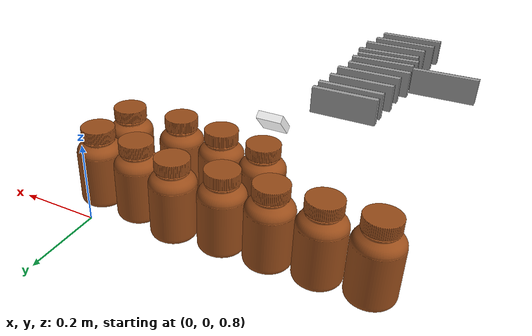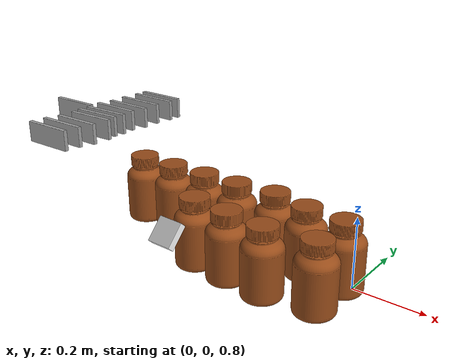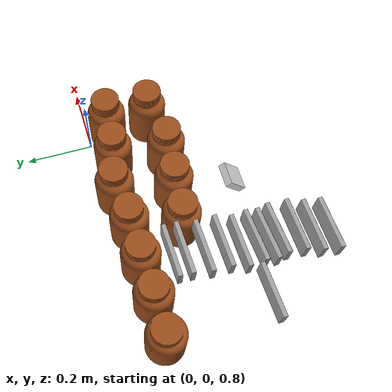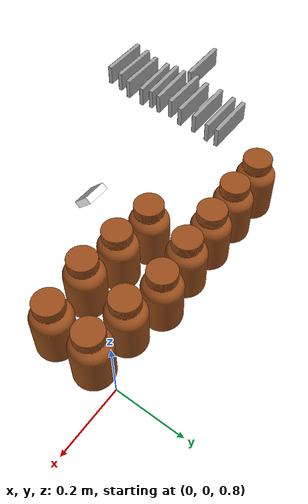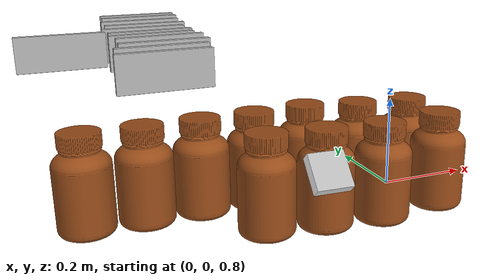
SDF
<sdf version="1.7">
 <world name="default">
  <model name="med_1_0_clone_2">
   <link name="link_0">
    <inertial>
     <mass>1</mass>
     <inertia>
      <ixx>0.166667</ixx>
      <ixy>0</ixy>
      <ixz>0</ixz>
      <iyy>0.166667</iyy>
      <iyz>0</iyz>
      <izz>0.166667</izz>
     </inertia>
    </inertial>
    <pose>0 -0.005 -0.025 0 -0 0</pose>
    <visual name="visual">
     <pose>0 0.005 0.025 0 -0 0</pose>
     <geometry><mesh><uri>model://med_1/meshes/med-1.dae</uri><scale>0.01 0.01 0.01</scale></mesh></geometry>
     <material>
      <shader type="pixel"><normal_map>__default__</normal_map></shader>
      <emissive>0 0 0 1</emissive>
     </material>
    </visual>
    <collision name="collision">
     <pose>0 0.005 0.025 0 -0 0</pose>
     <geometry><mesh><uri>model://med_1/meshes/med-1.dae</uri><scale>0.01 0.01 0.01</scale></mesh></geometry>
     <surface>
      <friction>
       <ode><mu>1</mu><mu2>1</mu2><fdir1>0 0 0</fdir1><slip1>0</slip1><slip2>0</slip2></ode>
       <torsional>
        <coefficient>1</coefficient>
        <patch_radius>0</patch_radius>
        <surface_radius>0</surface_radius>
        <use_patch_radius>1</use_patch_radius>
        <ode><slip>0</slip></ode>
       </torsional>
      </friction>
      <bounce><restitution_coefficient>0</restitution_coefficient><threshold>1e+06</threshold></bounce>
      <contact>
       <collide_without_contact>0</collide_without_contact>
       <collide_without_contact_bitmask>1</collide_without_contact_bitmask>
       <collide_bitmask>1</collide_bitmask>
       <ode>
        <soft_cfm>0</soft_cfm>
        <soft_erp>0.2</soft_erp>
        <kp>1e+13</kp>
        <kd>1</kd>
        <max_vel>0.01</max_vel>
        <min_depth>0</min_depth>
       </ode>
       <bullet>
        <split_impulse>1</split_impulse>
        <split_impulse_penetration_threshold>-0.01</split_impulse_penetration_threshold>
        <soft_cfm>0</soft_cfm>
        <soft_erp>0.2</soft_erp>
        <kp>1e+13</kp>
        <kd>1</kd>
       </bullet>
      </contact>
     </surface>
    </collision>
   </link>
   <static>0</static>
   <pose>-0.568098 -0.151441 1.20019 2e-06 -1e-06 -3.1318</pose>
  </model>
  <model name="med_1_0_clone_4">
   <link name="link_0">
    <inertial>
     <mass>1</mass>
     <inertia>
      <ixx>0.166667</ixx>
      <ixy>0</ixy>
      <ixz>0</ixz>
      <iyy>0.166667</iyy>
      <iyz>0</iyz>
      <izz>0.166667</izz>
     </inertia>
    </inertial>
    <pose>0 -0.005 -0.025 0 -0 0</pose>
    <visual name="visual">
     <pose>0 0.005 0.025 0 -0 0</pose>
     <geometry><mesh><uri>model://med_1/meshes/med-1.dae</uri><scale>0.01 0.01 0.01</scale></mesh></geometry>
     <material>
      <shader type="pixel"><normal_map>__default__</normal_map></shader>
      <emissive>0 0 0 1</emissive>
     </material>
    </visual>
    <collision name="collision">
     <pose>0 0.005 0.025 0 -0 0</pose>
     <geometry><mesh><uri>model://med_1/meshes/med-1.dae</uri><scale>0.01 0.01 0.01</scale></mesh></geometry>
     <surface>
      <friction>
       <ode><mu>1</mu><mu2>1</mu2><fdir1>0 0 0</fdir1><slip1>0</slip1><slip2>0</slip2></ode>
       <torsional>
        <coefficient>1</coefficient>
        <patch_radius>0</patch_radius>
        <surface_radius>0</surface_radius>
        <use_patch_radius>1</use_patch_radius>
        <ode><slip>0</slip></ode>
       </torsional>
      </friction>
      <bounce><restitution_coefficient>0</restitution_coefficient><threshold>1e+06</threshold></bounce>
      <contact>
       <collide_without_contact>0</collide_without_contact>
       <collide_without_contact_bitmask>1</collide_without_contact_bitmask>
       <collide_bitmask>1</collide_bitmask>
       <ode>
        <soft_cfm>0</soft_cfm>
        <soft_erp>0.2</soft_erp>
        <kp>1e+13</kp>
        <kd>1</kd>
        <max_vel>0.01</max_vel>
        <min_depth>0</min_depth>
       </ode>
       <bullet>
        <split_impulse>1</split_impulse>
        <split_impulse_penetration_threshold>-0.01</split_impulse_penetration_threshold>
        <soft_cfm>0</soft_cfm>
        <soft_erp>0.2</soft_erp>
        <kp>1e+13</kp>
        <kd>1</kd>
       </bullet>
      </contact>
     </surface>
    </collision>
   </link>
   <static>0</static>
   <pose>-0.578983 -0.290027 1.20019 4e-06 -1e-06 -3.08904</pose>
  </model>
  <model name="med_1_0_clone_6">
   <link name="link_0">
    <inertial>
     <mass>1</mass>
     <inertia>
      <ixx>0.166667</ixx>
      <ixy>0</ixy>
      <ixz>0</ixz>
      <iyy>0.166667</iyy>
      <iyz>0</iyz>
      <izz>0.166667</izz>
     </inertia>
    </inertial>
    <pose>0 -0.005 -0.025 0 -0 0</pose>
    <visual name="visual">
     <pose>0 0.005 0.025 0 -0 0</pose>
     <geometry><mesh><uri>model://med_1/meshes/med-1.dae</uri><scale>0.01 0.01 0.01</scale></mesh></geometry>
     <material>
      <shader type="pixel"><normal_map>__default__</normal_map></shader>
      <emissive>0 0 0 1</emissive>
     </material>
    </visual>
    <collision name="collision">
     <pose>0 0.005 0.025 0 -0 0</pose>
     <geometry><mesh><uri>model://med_1/meshes/med-1.dae</uri><scale>0.01 0.01 0.01</scale></mesh></geometry>
     <surface>
      <friction>
       <ode><mu>1</mu><mu2>1</mu2><fdir1>0 0 0</fdir1><slip1>0</slip1><slip2>0</slip2></ode>
       <torsional>
        <coefficient>1</coefficient>
        <patch_radius>0</patch_radius>
        <surface_radius>0</surface_radius>
        <use_patch_radius>1</use_patch_radius>
        <ode><slip>0</slip></ode>
       </torsional>
      </friction>
      <bounce><restitution_coefficient>0</restitution_coefficient><threshold>1e+06</threshold></bounce>
      <contact>
       <collide_without_contact>0</collide_without_contact>
       <collide_without_contact_bitmask>1</collide_without_contact_bitmask>
       <collide_bitmask>1</collide_bitmask>
       <ode>
        <soft_cfm>0</soft_cfm>
        <soft_erp>0.2</soft_erp>
        <kp>1e+13</kp>
        <kd>1</kd>
        <max_vel>0.01</max_vel>
        <min_depth>0</min_depth>
       </ode>
       <bullet>
        <split_impulse>1</split_impulse>
        <split_impulse_penetration_threshold>-0.01</split_impulse_penetration_threshold>
        <soft_cfm>0</soft_cfm>
        <soft_erp>0.2</soft_erp>
        <kp>1e+13</kp>
        <kd>1</kd>
       </bullet>
      </contact>
     </surface>
    </collision>
   </link>
   <static>0</static>
   <pose>-0.575517 -0.264277 1.20018 -6e-06 -0 -3.09265</pose>
  </model>
  <model name="med_1_0_clone_7">
   <link name="link_0">
    <inertial>
     <mass>1</mass>
     <inertia>
      <ixx>0.166667</ixx>
      <ixy>0</ixy>
      <ixz>0</ixz>
      <iyy>0.166667</iyy>
      <iyz>0</iyz>
      <izz>0.166667</izz>
     </inertia>
    </inertial>
    <pose>0 -0.005 -0.025 0 -0 0</pose>
    <visual name="visual">
     <pose>0 0.005 0.025 0 -0 0</pose>
     <geometry><mesh><uri>model://med_1/meshes/med-1.dae</uri><scale>0.01 0.01 0.01</scale></mesh></geometry>
     <material>
      <shader type="pixel"><normal_map>__default__</normal_map></shader>
      <emissive>0 0 0 1</emissive>
     </material>
    </visual>
    <collision name="collision">
     <pose>0 0.005 0.025 0 -0 0</pose>
     <geometry><mesh><uri>model://med_1/meshes/med-1.dae</uri><scale>0.01 0.01 0.01</scale></mesh></geometry>
     <surface>
      <friction>
       <ode><mu>1</mu><mu2>1</mu2><fdir1>0 0 0</fdir1><slip1>0</slip1><slip2>0</slip2></ode>
       <torsional>
        <coefficient>1</coefficient>
        <patch_radius>0</patch_radius>
        <surface_radius>0</surface_radius>
        <use_patch_radius>1</use_patch_radius>
        <ode><slip>0</slip></ode>
       </torsional>
      </friction>
      <bounce><restitution_coefficient>0</restitution_coefficient><threshold>1e+06</threshold></bounce>
      <contact>
       <collide_without_contact>0</collide_without_contact>
       <collide_without_contact_bitmask>1</collide_without_contact_bitmask>
       <collide_bitmask>1</collide_bitmask>
       <ode>
        <soft_cfm>0</soft_cfm>
        <soft_erp>0.2</soft_erp>
        <kp>1e+13</kp>
        <kd>1</kd>
        <max_vel>0.01</max_vel>
        <min_depth>0</min_depth>
       </ode>
       <bullet>
        <split_impulse>1</split_impulse>
        <split_impulse_penetration_threshold>-0.01</split_impulse_penetration_threshold>
        <soft_cfm>0</soft_cfm>
        <soft_erp>0.2</soft_erp>
        <kp>1e+13</kp>
        <kd>1</kd>
       </bullet>
      </contact>
     </surface>
    </collision>
   </link>
   <static>0</static>
   <pose>-0.698202 -0.254669 1.20019 -1.5e-05 4e-06 -3.12393</pose>
  </model>
  <model name="med_1_0_clone_9">
   <link name="link_0">
    <inertial>
     <mass>1</mass>
     <inertia>
      <ixx>0.166667</ixx>
      <ixy>0</ixy>
      <ixz>0</ixz>
      <iyy>0.166667</iyy>
      <iyz>0</iyz>
      <izz>0.166667</izz>
     </inertia>
    </inertial>
    <pose>0 -0.005 -0.025 0 -0 0</pose>
    <visual name="visual">
     <pose>0 0.005 0.025 0 -0 0</pose>
     <geometry><mesh><uri>model://med_1/meshes/med-1.dae</uri><scale>0.01 0.01 0.01</scale></mesh></geometry>
     <material>
      <shader type="pixel"><normal_map>__default__</normal_map></shader>
      <emissive>0 0 0 1</emissive>
     </material>
    </visual>
    <collision name="collision">
     <pose>0 0.005 0.025 0 -0 0</pose>
     <geometry><mesh><uri>model://med_1/meshes/med-1.dae</uri><scale>0.01 0.01 0.01</scale></mesh></geometry>
     <surface>
      <friction>
       <ode><mu>1</mu><mu2>1</mu2><fdir1>0 0 0</fdir1><slip1>0</slip1><slip2>0</slip2></ode>
       <torsional>
        <coefficient>1</coefficient>
        <patch_radius>0</patch_radius>
        <surface_radius>0</surface_radius>
        <use_patch_radius>1</use_patch_radius>
        <ode><slip>0</slip></ode>
       </torsional>
      </friction>
      <bounce><restitution_coefficient>0</restitution_coefficient><threshold>1e+06</threshold></bounce>
      <contact>
       <collide_without_contact>0</collide_without_contact>
       <collide_without_contact_bitmask>1</collide_without_contact_bitmask>
       <collide_bitmask>1</collide_bitmask>
       <ode>
        <soft_cfm>0</soft_cfm>
        <soft_erp>0.2</soft_erp>
        <kp>1e+13</kp>
        <kd>1</kd>
        <max_vel>0.01</max_vel>
        <min_depth>0</min_depth>
       </ode>
       <bullet>
        <split_impulse>1</split_impulse>
        <split_impulse_penetration_threshold>-0.01</split_impulse_penetration_threshold>
        <soft_cfm>0</soft_cfm>
        <soft_erp>0.2</soft_erp>
        <kp>1e+13</kp>
        <kd>1</kd>
       </bullet>
      </contact>
     </surface>
    </collision>
   </link>
   <static>0</static>
   <pose>-0.560988 -0.110137 1.20018 3e-06 2e-06 -3.1318</pose>
  </model>
  <model name="med_1_0_clone_22">
   <link name="link_0">
    <inertial>
     <mass>1</mass>
     <inertia>
      <ixx>0.166667</ixx>
      <ixy>0</ixy>
      <ixz>0</ixz>
      <iyy>0.166667</iyy>
      <iyz>0</iyz>
      <izz>0.166667</izz>
     </inertia>
    </inertial>
    <pose>0 -0.005 -0.025 0 -0 0</pose>
    <visual name="visual">
     <pose>0 0.005 0.025 0 -0 0</pose>
     <geometry><mesh><uri>model://med_1/meshes/med-1.dae</uri><scale>0.01 0.01 0.01</scale></mesh></geometry>
     <material>
      <shader type="pixel"><normal_map>__default__</normal_map></shader>
      <emissive>0 0 0 1</emissive>
     </material>
    </visual>
    <collision name="collision">
     <pose>0 0.005 0.025 0 -0 0</pose>
     <geometry><mesh><uri>model://med_1/meshes/med-1.dae</uri><scale>0.01 0.01 0.01</scale></mesh></geometry>
     <surface>
      <friction>
       <ode><mu>1</mu><mu2>1</mu2><fdir1>0 0 0</fdir1><slip1>0</slip1><slip2>0</slip2></ode>
       <torsional>
        <coefficient>1</coefficient>
        <patch_radius>0</patch_radius>
        <surface_radius>0</surface_radius>
        <use_patch_radius>1</use_patch_radius>
        <ode><slip>0</slip></ode>
       </torsional>
      </friction>
      <bounce><restitution_coefficient>0</restitution_coefficient><threshold>1e+06</threshold></bounce>
      <contact>
       <collide_without_contact>0</collide_without_contact>
       <collide_without_contact_bitmask>1</collide_without_contact_bitmask>
       <collide_bitmask>1</collide_bitmask>
       <ode>
        <soft_cfm>0</soft_cfm>
        <soft_erp>0.2</soft_erp>
        <kp>1e+13</kp>
        <kd>1</kd>
        <max_vel>0.01</max_vel>
        <min_depth>0</min_depth>
       </ode>
       <bullet>
        <split_impulse>1</split_impulse>
        <split_impulse_penetration_threshold>-0.01</split_impulse_penetration_threshold>
        <soft_cfm>0</soft_cfm>
        <soft_erp>0.2</soft_erp>
        <kp>1e+13</kp>
        <kd>1</kd>
       </bullet>
      </contact>
     </surface>
    </collision>
   </link>
   <static>0</static>
   <pose>-0.576751 -0.356545 1.20019 -1e-06 2e-06 -3.13179</pose>
  </model>
  <model name="med_1_0_clone_25">
   <link name="link_0">
    <inertial>
     <mass>1</mass>
     <inertia>
      <ixx>0.166667</ixx>
      <ixy>0</ixy>
      <ixz>0</ixz>
      <iyy>0.166667</iyy>
      <iyz>0</iyz>
      <izz>0.166667</izz>
     </inertia>
    </inertial>
    <pose>0 -0.005 -0.025 0 -0 0</pose>
    <visual name="visual">
     <pose>0 0.005 0.025 0 -0 0</pose>
     <geometry><mesh><uri>model://med_1/meshes/med-1.dae</uri><scale>0.01 0.01 0.01</scale></mesh></geometry>
     <material>
      <shader type="pixel"><normal_map>__default__</normal_map></shader>
      <emissive>0 0 0 1</emissive>
     </material>
    </visual>
    <collision name="collision">
     <pose>0 0.005 0.025 0 -0 0</pose>
     <geometry><mesh><uri>model://med_1/meshes/med-1.dae</uri><scale>0.01 0.01 0.01</scale></mesh></geometry>
     <surface>
      <friction>
       <ode><mu>1</mu><mu2>1</mu2><fdir1>0 0 0</fdir1><slip1>0</slip1><slip2>0</slip2></ode>
       <torsional>
        <coefficient>1</coefficient>
        <patch_radius>0</patch_radius>
        <surface_radius>0</surface_radius>
        <use_patch_radius>1</use_patch_radius>
        <ode><slip>0</slip></ode>
       </torsional>
      </friction>
      <bounce><restitution_coefficient>0</restitution_coefficient><threshold>1e+06</threshold></bounce>
      <contact>
       <collide_without_contact>0</collide_without_contact>
       <collide_without_contact_bitmask>1</collide_without_contact_bitmask>
       <collide_bitmask>1</collide_bitmask>
       <ode>
        <soft_cfm>0</soft_cfm>
        <soft_erp>0.2</soft_erp>
        <kp>1e+13</kp>
        <kd>1</kd>
        <max_vel>0.01</max_vel>
        <min_depth>0</min_depth>
       </ode>
       <bullet>
        <split_impulse>1</split_impulse>
        <split_impulse_penetration_threshold>-0.01</split_impulse_penetration_threshold>
        <soft_cfm>0</soft_cfm>
        <soft_erp>0.2</soft_erp>
        <kp>1e+13</kp>
        <kd>1</kd>
       </bullet>
      </contact>
     </surface>
    </collision>
   </link>
   <static>0</static>
   <pose>-0.593915 -0.427871 1.20019 -2.5e-05 -0 -3.13179</pose>
  </model>
  <model name="med_1_0_clone_26">
   <link name="link_0">
    <inertial>
     <mass>1</mass>
     <inertia>
      <ixx>0.166667</ixx>
      <ixy>0</ixy>
      <ixz>0</ixz>
      <iyy>0.166667</iyy>
      <iyz>0</iyz>
      <izz>0.166667</izz>
     </inertia>
    </inertial>
    <pose>0 -0.005 -0.025 0 -0 0</pose>
    <visual name="visual">
     <pose>0 0.005 0.025 0 -0 0</pose>
     <geometry><mesh><uri>model://med_1/meshes/med-1.dae</uri><scale>0.01 0.01 0.01</scale></mesh></geometry>
     <material>
      <shader type="pixel"><normal_map>__default__</normal_map></shader>
      <emissive>0 0 0 1</emissive>
     </material>
    </visual>
    <collision name="collision">
     <pose>0 0.005 0.025 0 -0 0</pose>
     <geometry><mesh><uri>model://med_1/meshes/med-1.dae</uri><scale>0.01 0.01 0.01</scale></mesh></geometry>
     <surface>
      <friction>
       <ode><mu>1</mu><mu2>1</mu2><fdir1>0 0 0</fdir1><slip1>0</slip1><slip2>0</slip2></ode>
       <torsional>
        <coefficient>1</coefficient>
        <patch_radius>0</patch_radius>
        <surface_radius>0</surface_radius>
        <use_patch_radius>1</use_patch_radius>
        <ode><slip>0</slip></ode>
       </torsional>
      </friction>
      <bounce><restitution_coefficient>0</restitution_coefficient><threshold>1e+06</threshold></bounce>
      <contact>
       <collide_without_contact>0</collide_without_contact>
       <collide_without_contact_bitmask>1</collide_without_contact_bitmask>
       <collide_bitmask>1</collide_bitmask>
       <ode>
        <soft_cfm>0</soft_cfm>
        <soft_erp>0.2</soft_erp>
        <kp>1e+13</kp>
        <kd>1</kd>
        <max_vel>0.01</max_vel>
        <min_depth>0</min_depth>
       </ode>
       <bullet>
        <split_impulse>1</split_impulse>
        <split_impulse_penetration_threshold>-0.01</split_impulse_penetration_threshold>
        <soft_cfm>0</soft_cfm>
        <soft_erp>0.2</soft_erp>
        <kp>1e+13</kp>
        <kd>1</kd>
       </bullet>
      </contact>
     </surface>
    </collision>
   </link>
   <static>0</static>
   <pose>-0.587979 -0.390916 1.20019 -2.7e-05 -0 -3.13179</pose>
  </model>
  <model name="med_1_0_clone_34">
   <link name="link_0">
    <inertial>
     <mass>1</mass>
     <inertia>
      <ixx>0.166667</ixx>
      <ixy>0</ixy>
      <ixz>0</ixz>
      <iyy>0.166667</iyy>
      <iyz>0</iyz>
      <izz>0.166667</izz>
     </inertia>
    </inertial>
    <pose>0 -0.005 -0.025 0 -0 0</pose>
    <visual name="visual">
     <pose>0 0.005 0.025 0 -0 0</pose>
     <geometry><mesh><uri>model://med_1/meshes/med-1.dae</uri><scale>0.01 0.01 0.01</scale></mesh></geometry>
     <material>
      <shader type="pixel"><normal_map>__default__</normal_map></shader>
      <emissive>0 0 0 1</emissive>
     </material>
    </visual>
    <collision name="collision">
     <pose>0 0.005 0.025 0 -0 0</pose>
     <geometry><mesh><uri>model://med_1/meshes/med-1.dae</uri><scale>0.01 0.01 0.01</scale></mesh></geometry>
     <surface>
      <friction>
       <ode><mu>1</mu><mu2>1</mu2><fdir1>0 0 0</fdir1><slip1>0</slip1><slip2>0</slip2></ode>
       <torsional>
        <coefficient>1</coefficient>
        <patch_radius>0</patch_radius>
        <surface_radius>0</surface_radius>
        <use_patch_radius>1</use_patch_radius>
        <ode><slip>0</slip></ode>
       </torsional>
      </friction>
      <bounce><restitution_coefficient>0</restitution_coefficient><threshold>1e+06</threshold></bounce>
      <contact>
       <collide_without_contact>0</collide_without_contact>
       <collide_without_contact_bitmask>1</collide_without_contact_bitmask>
       <collide_bitmask>1</collide_bitmask>
       <ode>
        <soft_cfm>0</soft_cfm>
        <soft_erp>0.2</soft_erp>
        <kp>1e+13</kp>
        <kd>1</kd>
        <max_vel>0.01</max_vel>
        <min_depth>0</min_depth>
       </ode>
       <bullet>
        <split_impulse>1</split_impulse>
        <split_impulse_penetration_threshold>-0.01</split_impulse_penetration_threshold>
        <soft_cfm>0</soft_cfm>
        <soft_erp>0.2</soft_erp>
        <kp>1e+13</kp>
        <kd>1</kd>
       </bullet>
      </contact>
     </surface>
    </collision>
   </link>
   <static>0</static>
   <pose>-0.573314 -0.314911 1.20019 6e-06 0 -3.09475</pose>
  </model>
  <model name="med_1_0_clone_37">
   <link name="link_0">
    <inertial>
     <mass>1</mass>
     <inertia>
      <ixx>0.166667</ixx>
      <ixy>0</ixy>
      <ixz>0</ixz>
      <iyy>0.166667</iyy>
      <iyz>0</iyz>
      <izz>0.166667</izz>
     </inertia>
    </inertial>
    <pose>0 -0.005 -0.025 0 -0 0</pose>
    <visual name="visual">
     <pose>0 0.005 0.025 0 -0 0</pose>
     <geometry><mesh><uri>model://med_1/meshes/med-1.dae</uri><scale>0.01 0.01 0.01</scale></mesh></geometry>
     <material>
      <shader type="pixel"><normal_map>__default__</normal_map></shader>
      <emissive>0 0 0 1</emissive>
     </material>
    </visual>
    <collision name="collision">
     <pose>0 0.005 0.025 0 -0 0</pose>
     <geometry><mesh><uri>model://med_1/meshes/med-1.dae</uri><scale>0.01 0.01 0.01</scale></mesh></geometry>
     <surface>
      <friction>
       <ode><mu>1</mu><mu2>1</mu2><fdir1>0 0 0</fdir1><slip1>0</slip1><slip2>0</slip2></ode>
       <torsional>
        <coefficient>1</coefficient>
        <patch_radius>0</patch_radius>
        <surface_radius>0</surface_radius>
        <use_patch_radius>1</use_patch_radius>
        <ode><slip>0</slip></ode>
       </torsional>
      </friction>
      <bounce><restitution_coefficient>0</restitution_coefficient><threshold>1e+06</threshold></bounce>
      <contact>
       <collide_without_contact>0</collide_without_contact>
       <collide_without_contact_bitmask>1</collide_without_contact_bitmask>
       <collide_bitmask>1</collide_bitmask>
       <ode>
        <soft_cfm>0</soft_cfm>
        <soft_erp>0.2</soft_erp>
        <kp>1e+13</kp>
        <kd>1</kd>
        <max_vel>0.01</max_vel>
        <min_depth>0</min_depth>
       </ode>
       <bullet>
        <split_impulse>1</split_impulse>
        <split_impulse_penetration_threshold>-0.01</split_impulse_penetration_threshold>
        <soft_cfm>0</soft_cfm>
        <soft_erp>0.2</soft_erp>
        <kp>1e+13</kp>
        <kd>1</kd>
       </bullet>
      </contact>
     </surface>
    </collision>
   </link>
   <static>0</static>
   <pose>-0.568934 -0.193448 1.20019 -8e-06 -0 -3.13179</pose>
  </model>
  <model name="med_1_0_clone_41">
   <link name="link_0">
    <inertial>
     <mass>1</mass>
     <inertia>
      <ixx>0.166667</ixx>
      <ixy>0</ixy>
      <ixz>0</ixz>
      <iyy>0.166667</iyy>
      <iyz>0</iyz>
      <izz>0.166667</izz>
     </inertia>
    </inertial>
    <pose>0 -0.005 -0.025 0 -0 0</pose>
    <visual name="visual">
     <pose>0 0.005 0.025 0 -0 0</pose>
     <geometry><mesh><uri>model://med_1/meshes/med-1.dae</uri><scale>0.01 0.01 0.01</scale></mesh></geometry>
     <material>
      <shader type="pixel"><normal_map>__default__</normal_map></shader>
      <emissive>0 0 0 1</emissive>
     </material>
    </visual>
    <collision name="collision">
     <pose>0 0.005 0.025 0 -0 0</pose>
     <geometry><mesh><uri>model://med_1/meshes/med-1.dae</uri><scale>0.01 0.01 0.01</scale></mesh></geometry>
     <surface>
      <friction>
       <ode><mu>1</mu><mu2>1</mu2><fdir1>0 0 0</fdir1><slip1>0</slip1><slip2>0</slip2></ode>
       <torsional>
        <coefficient>1</coefficient>
        <patch_radius>0</patch_radius>
        <surface_radius>0</surface_radius>
        <use_patch_radius>1</use_patch_radius>
        <ode><slip>0</slip></ode>
       </torsional>
      </friction>
      <bounce><restitution_coefficient>0</restitution_coefficient><threshold>1e+06</threshold></bounce>
      <contact>
       <collide_without_contact>0</collide_without_contact>
       <collide_without_contact_bitmask>1</collide_without_contact_bitmask>
       <collide_bitmask>1</collide_bitmask>
       <ode>
        <soft_cfm>0</soft_cfm>
        <soft_erp>0.2</soft_erp>
        <kp>1e+13</kp>
        <kd>1</kd>
        <max_vel>0.01</max_vel>
        <min_depth>0</min_depth>
       </ode>
       <bullet>
        <split_impulse>1</split_impulse>
        <split_impulse_penetration_threshold>-0.01</split_impulse_penetration_threshold>
        <soft_cfm>0</soft_cfm>
        <soft_erp>0.2</soft_erp>
        <kp>1e+13</kp>
        <kd>1</kd>
       </bullet>
      </contact>
     </surface>
    </collision>
   </link>
   <static>0</static>
   <pose>-0.559819 -0.081892 1.20019 -6e-06 0 -3.13178</pose>
  </model>
  <model name="Medicine_Bottle_1_clone">
   <static>0</static>
   <link name="medicine_bottle_link">
    <inertial>
     <mass>0.05</mass>
     <inertia><ixx>1e-05</ixx><ixy>0</ixy><ixz>0</ixz><iyy>1e-05</iyy><iyz>0</iyz><izz>1e-05</izz></inertia>
    </inertial>
    <visual name="visual">
     <geometry>
      <mesh><uri>model://Medicine_Bottle/meshes/Medicine_Bottle.stl</uri><scale>0.1 0.1 0.1</scale></mesh>
     </geometry>
     <material>
      <ambient>0.3 0.2 0.05 1</ambient>
      <diffuse>0.6 0.3 0.1 1</diffuse>
      <specular>0.2 0.2 0.2 1</specular>
      <emissive>0 0 0 1</emissive>
     </material>
    </visual>
    <collision name="collision">
     <geometry>
      <mesh><uri>model://Medicine_Bottle/meshes/Medicine_Bottle.stl</uri><scale>0.1 0.1 0.1</scale></mesh>
     </geometry>
    </collision>
   </link>
   <pose>-0.447516 -0.037443 0.824988 -0.00016 -0.000412 0.05919</pose>
  </model>
  <model name="Medicine_Bottle_1_clone_0_clone_0">
   <static>0</static>
   <link name="medicine_bottle_link">
    <inertial>
     <mass>0.05</mass>
     <inertia><ixx>1e-05</ixx><ixy>0</ixy><ixz>0</ixz><iyy>1e-05</iyy><iyz>0</iyz><izz>1e-05</izz></inertia>
    </inertial>
    <visual name="visual">
     <geometry>
      <mesh><uri>model://Medicine_Bottle/meshes/Medicine_Bottle.stl</uri><scale>0.1 0.1 0.1</scale></mesh>
     </geometry>
     <material>
      <ambient>0.3 0.2 0.05 1</ambient>
      <diffuse>0.6 0.3 0.1 1</diffuse>
      <specular>0.2 0.2 0.2 1</specular>
      <emissive>0 0 0 1</emissive>
     </material>
    </visual>
    <collision name="collision">
     <geometry>
      <mesh><uri>model://Medicine_Bottle/meshes/Medicine_Bottle.stl</uri><scale>0.1 0.1 0.1</scale></mesh>
     </geometry>
    </collision>
   </link>
   <pose>-0.138626 -0.200488 0.824988 -0.000161 -0.000412 -0.033099</pose>
  </model>
  <model name="Medicine_Bottle_1_clone_0_clone_0_clone">
   <static>0</static>
   <link name="medicine_bottle_link">
    <inertial>
     <mass>0.05</mass>
     <inertia><ixx>1e-05</ixx><ixy>0</ixy><ixz>0</ixz><iyy>1e-05</iyy><iyz>0</iyz><izz>1e-05</izz></inertia>
    </inertial>
    <visual name="visual">
     <geometry>
      <mesh><uri>model://Medicine_Bottle/meshes/Medicine_Bottle.stl</uri><scale>0.1 0.1 0.1</scale></mesh>
     </geometry>
     <material>
      <ambient>0.3 0.2 0.05 1</ambient>
      <diffuse>0.6 0.3 0.1 1</diffuse>
      <specular>0.2 0.2 0.2 1</specular>
      <emissive>0 0 0 1</emissive>
     </material>
    </visual>
    <collision name="collision">
     <geometry>
      <mesh><uri>model://Medicine_Bottle/meshes/Medicine_Bottle.stl</uri><scale>0.1 0.1 0.1</scale></mesh>
     </geometry>
    </collision>
   </link>
   <pose>-0.253864 -0.188426 0.824988 -0.00016 -0.000412 -0.004504</pose>
  </model>
  <model name="Medicine_Bottle_1_clone_clone">
   <static>0</static>
   <link name="medicine_bottle_link">
    <inertial>
     <mass>0.05</mass>
     <inertia><ixx>1e-05</ixx><ixy>0</ixy><ixz>0</ixz><iyy>1e-05</iyy><iyz>0</iyz><izz>1e-05</izz></inertia>
    </inertial>
    <visual name="visual">
     <geometry>
      <mesh><uri>model://Medicine_Bottle/meshes/Medicine_Bottle.stl</uri><scale>0.1 0.1 0.1</scale></mesh>
     </geometry>
     <material>
      <ambient>0.3 0.2 0.05 1</ambient>
      <diffuse>0.6 0.3 0.1 1</diffuse>
      <specular>0.2 0.2 0.2 1</specular>
      <emissive>0 0 0 1</emissive>
     </material>
    </visual>
    <collision name="collision">
     <geometry>
      <mesh><uri>model://Medicine_Bottle/meshes/Medicine_Bottle.stl</uri><scale>0.1 0.1 0.1</scale></mesh>
     </geometry>
    </collision>
   </link>
   <pose>-0.001862 -0.183147 0.824988 -0.000161 -0.000412 0.051104</pose>
  </model>
  <model name="Medicine_Bottle_1_clone_clone_0">
   <static>0</static>
   <link name="medicine_bottle_link">
    <inertial>
     <mass>0.05</mass>
     <inertia><ixx>1e-05</ixx><ixy>0</ixy><ixz>0</ixz><iyy>1e-05</iyy><iyz>0</iyz><izz>1e-05</izz></inertia>
    </inertial>
    <visual name="visual">
     <geometry>
      <mesh><uri>model://Medicine_Bottle/meshes/Medicine_Bottle.stl</uri><scale>0.1 0.1 0.1</scale></mesh>
     </geometry>
     <material>
      <ambient>0.3 0.2 0.05 1</ambient>
      <diffuse>0.6 0.3 0.1 1</diffuse>
      <specular>0.2 0.2 0.2 1</specular>
      <emissive>0 0 0 1</emissive>
     </material>
    </visual>
    <collision name="collision">
     <geometry>
      <mesh><uri>model://Medicine_Bottle/meshes/Medicine_Bottle.stl</uri><scale>0.1 0.1 0.1</scale></mesh>
     </geometry>
    </collision>
   </link>
   <pose>-0.669522 -0.038783 0.824988 -0.00016 -0.000412 0.318389</pose>
  </model>
  <model name="Medicine_Bottle_1_clone_clone_1">
   <static>0</static>
   <link name="medicine_bottle_link">
    <inertial>
     <mass>0.05</mass>
     <inertia><ixx>1e-05</ixx><ixy>0</ixy><ixz>0</ixz><iyy>1e-05</iyy><iyz>0</iyz><izz>1e-05</izz></inertia>
    </inertial>
    <visual name="visual">
     <geometry>
      <mesh><uri>model://Medicine_Bottle/meshes/Medicine_Bottle.stl</uri><scale>0.1 0.1 0.1</scale></mesh>
     </geometry>
     <material>
      <ambient>0.3 0.2 0.05 1</ambient>
      <diffuse>0.6 0.3 0.1 1</diffuse>
      <specular>0.2 0.2 0.2 1</specular>
      <emissive>0 0 0 1</emissive>
     </material>
    </visual>
    <collision name="collision">
     <geometry>
      <mesh><uri>model://Medicine_Bottle/meshes/Medicine_Bottle.stl</uri><scale>0.1 0.1 0.1</scale></mesh>
     </geometry>
    </collision>
   </link>
   <pose>0.002032 -0.061082 0.824988 -0.00016 -0.000412 0.05919</pose>
  </model>
  <model name="Medicine_Bottle_1_clone_clone_2">
   <static>0</static>
   <link name="medicine_bottle_link">
    <inertial>
     <mass>0.05</mass>
     <inertia><ixx>1e-05</ixx><ixy>0</ixy><ixz>0</ixz><iyy>1e-05</iyy><iyz>0</iyz><izz>1e-05</izz></inertia>
    </inertial>
    <visual name="visual">
     <geometry>
      <mesh><uri>model://Medicine_Bottle/meshes/Medicine_Bottle.stl</uri><scale>0.1 0.1 0.1</scale></mesh>
     </geometry>
     <material>
      <ambient>0.3 0.2 0.05 1</ambient>
      <diffuse>0.6 0.3 0.1 1</diffuse>
      <specular>0.2 0.2 0.2 1</specular>
      <emissive>0 0 0 1</emissive>
     </material>
    </visual>
    <collision name="collision">
     <geometry>
      <mesh><uri>model://Medicine_Bottle/meshes/Medicine_Bottle.stl</uri><scale>0.1 0.1 0.1</scale></mesh>
     </geometry>
    </collision>
   </link>
   <pose>-0.112353 -0.050825 0.824988 -0.00016 -0.000412 0.05919</pose>
  </model>
  <model name="Medicine_Bottle_1_clone_clone_3">
   <static>0</static>
   <link name="medicine_bottle_link">
    <inertial>
     <mass>0.05</mass>
     <inertia><ixx>1e-05</ixx><ixy>0</ixy><ixz>0</ixz><iyy>1e-05</iyy><iyz>0</iyz><izz>1e-05</izz></inertia>
    </inertial>
    <visual name="visual">
     <geometry>
      <mesh><uri>model://Medicine_Bottle/meshes/Medicine_Bottle.stl</uri><scale>0.1 0.1 0.1</scale></mesh>
     </geometry>
     <material>
      <ambient>0.3 0.2 0.05 1</ambient>
      <diffuse>0.6 0.3 0.1 1</diffuse>
      <specular>0.2 0.2 0.2 1</specular>
      <emissive>0 0 0 1</emissive>
     </material>
    </visual>
    <collision name="collision">
     <geometry>
      <mesh><uri>model://Medicine_Bottle/meshes/Medicine_Bottle.stl</uri><scale>0.1 0.1 0.1</scale></mesh>
     </geometry>
    </collision>
   </link>
   <pose>-0.222015 -0.026397 0.824988 -0.00016 -0.000412 0.049902</pose>
  </model>
  <model name="Medicine_Bottle_1_clone_clone_4">
   <static>0</static>
   <link name="medicine_bottle_link">
    <inertial>
     <mass>0.05</mass>
     <inertia><ixx>1e-05</ixx><ixy>0</ixy><ixz>0</ixz><iyy>1e-05</iyy><iyz>0</iyz><izz>1e-05</izz></inertia>
    </inertial>
    <visual name="visual">
     <geometry>
      <mesh><uri>model://Medicine_Bottle/meshes/Medicine_Bottle.stl</uri><scale>0.1 0.1 0.1</scale></mesh>
     </geometry>
     <material>
      <ambient>0.3 0.2 0.05 1</ambient>
      <diffuse>0.6 0.3 0.1 1</diffuse>
      <specular>0.2 0.2 0.2 1</specular>
      <emissive>0 0 0 1</emissive>
     </material>
    </visual>
    <collision name="collision">
     <geometry>
      <mesh><uri>model://Medicine_Bottle/meshes/Medicine_Bottle.stl</uri><scale>0.1 0.1 0.1</scale></mesh>
     </geometry>
    </collision>
   </link>
   <pose>-0.337675 -0.036717 0.824988 -0.00016 -0.000412 -0.007512</pose>
  </model>
  <model name="Medicine_Bottle_1_clone_clone_5">
   <static>0</static>
   <link name="medicine_bottle_link">
    <inertial>
     <mass>0.05</mass>
     <inertia><ixx>1e-05</ixx><ixy>0</ixy><ixz>0</ixz><iyy>1e-05</iyy><iyz>0</iyz><izz>1e-05</izz></inertia>
    </inertial>
    <visual name="visual">
     <geometry>
      <mesh><uri>model://Medicine_Bottle/meshes/Medicine_Bottle.stl</uri><scale>0.1 0.1 0.1</scale></mesh>
     </geometry>
     <material>
      <ambient>0.3 0.2 0.05 1</ambient>
      <diffuse>0.6 0.3 0.1 1</diffuse>
      <specular>0.2 0.2 0.2 1</specular>
      <emissive>0 0 0 1</emissive>
     </material>
    </visual>
    <collision name="collision">
     <geometry>
      <mesh><uri>model://Medicine_Bottle/meshes/Medicine_Bottle.stl</uri><scale>0.1 0.1 0.1</scale></mesh>
     </geometry>
    </collision>
   </link>
   <pose>-0.558047 -0.040095 0.824988 -0.000161 -0.000412 -3.02269</pose>
  </model>
  <model name="Medicine_Bottle_1_clone_0_clone_0_clone_clone">
   <static>0</static>
   <link name="medicine_bottle_link">
    <inertial>
     <mass>0.05</mass>
     <inertia><ixx>1e-05</ixx><ixy>0</ixy><ixz>0</ixz><iyy>1e-05</iyy><iyz>0</iyz><izz>1e-05</izz></inertia>
    </inertial>
    <visual name="visual">
     <geometry>
      <mesh><uri>model://Medicine_Bottle/meshes/Medicine_Bottle.stl</uri><scale>0.1 0.1 0.1</scale></mesh>
     </geometry>
     <material>
      <ambient>0.3 0.2 0.05 1</ambient>
      <diffuse>0.6 0.3 0.1 1</diffuse>
      <specular>0.2 0.2 0.2 1</specular>
      <emissive>0 0 0 1</emissive>
     </material>
    </visual>
    <collision name="collision">
     <geometry>
      <mesh><uri>model://Medicine_Bottle/meshes/Medicine_Bottle.stl</uri><scale>0.1 0.1 0.1</scale></mesh>
     </geometry>
    </collision>
   </link>
   <pose>-0.366239 -0.174922 0.824988 -0.000161 -0.000412 -0.004494</pose>
  </model>
  <model name="med_1_0_clone_2_clone">
   <link name="link_0">
    <inertial>
     <mass>1</mass>
     <inertia>
      <ixx>0.166667</ixx>
      <ixy>0</ixy>
      <ixz>0</ixz>
      <iyy>0.166667</iyy>
      <iyz>0</iyz>
      <izz>0.166667</izz>
     </inertia>
    </inertial>
    <pose>0 -0.005 -0.025 0 -0 0</pose>
    <visual name="visual">
     <pose>0 0.005 0.025 0 -0 0</pose>
     <geometry><mesh><uri>model://med_1/meshes/med-1.dae</uri><scale>0.01 0.01 0.01</scale></mesh></geometry>
     <material>
      <shader type="pixel"><normal_map>__default__</normal_map></shader>
      <emissive>0 0 0 1</emissive>
     </material>
    </visual>
    <collision name="collision">
     <pose>0 0.005 0.025 0 -0 0</pose>
     <geometry><mesh><uri>model://med_1/meshes/med-1.dae</uri><scale>0.01 0.01 0.01</scale></mesh></geometry>
     <surface>
      <friction>
       <ode><mu>1</mu><mu2>1</mu2><fdir1>0 0 0</fdir1><slip1>0</slip1><slip2>0</slip2></ode>
       <torsional>
        <coefficient>1</coefficient>
        <patch_radius>0</patch_radius>
        <surface_radius>0</surface_radius>
        <use_patch_radius>1</use_patch_radius>
        <ode><slip>0</slip></ode>
       </torsional>
      </friction>
      <bounce><restitution_coefficient>0</restitution_coefficient><threshold>1e+06</threshold></bounce>
      <contact>
       <collide_without_contact>0</collide_without_contact>
       <collide_without_contact_bitmask>1</collide_without_contact_bitmask>
       <collide_bitmask>1</collide_bitmask>
       <ode>
        <soft_cfm>0</soft_cfm>
        <soft_erp>0.2</soft_erp>
        <kp>1e+13</kp>
        <kd>1</kd>
        <max_vel>0.01</max_vel>
        <min_depth>0</min_depth>
       </ode>
       <bullet>
        <split_impulse>1</split_impulse>
        <split_impulse_penetration_threshold>-0.01</split_impulse_penetration_threshold>
        <soft_cfm>0</soft_cfm>
        <soft_erp>0.2</soft_erp>
        <kp>1e+13</kp>
        <kd>1</kd>
       </bullet>
      </contact>
     </surface>
    </collision>
   </link>
   <static>0</static>
   <pose>-0.578983 -0.228472 1.20019 -2.2e-05 0 -3.1318</pose>
  </model>
  <model name="med12">
   <link name="link_0">
    <inertial>
     <mass>1</mass>
     <inertia>
      <ixx>0.166667</ixx>
      <ixy>0</ixy>
      <ixz>0</ixz>
      <iyy>0.166667</iyy>
      <iyz>0</iyz>
      <izz>0.166667</izz>
     </inertia>
    </inertial>
    <visual name="visual">
     <geometry><mesh><uri>model://med12/meshes/box_0p13x0p13x0p04.dae</uri><scale>1 1 1</scale></mesh></geometry>
     <material>
      <shader type="pixel"><normal_map>__default__</normal_map></shader>
      <emissive>0 0 0 1</emissive>
     </material>
    </visual>
    <collision name="collision">
     <geometry><mesh><uri>model://med12/meshes/box_0p13x0p13x0p04.dae</uri><scale>1 1 1</scale></mesh></geometry>
    </collision>
   </link>
   <static>1</static>
   <pose>-0.32075 -0.329286 0.99263 -0.751177 0.012229 -0.023252</pose>
  </model>
 </world>
</sdf>
